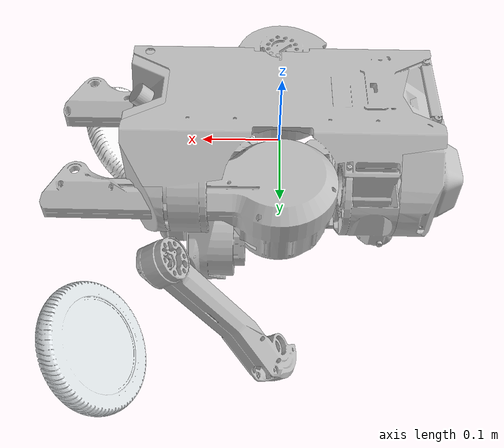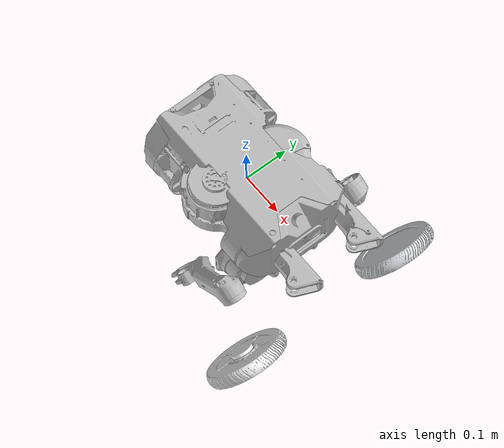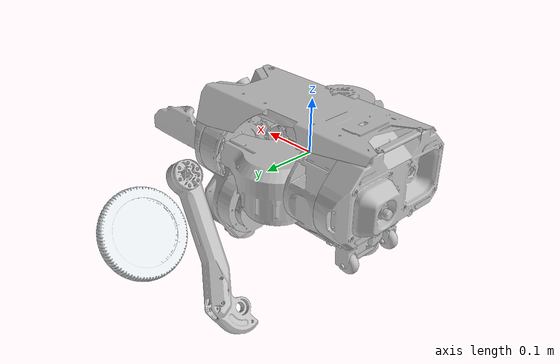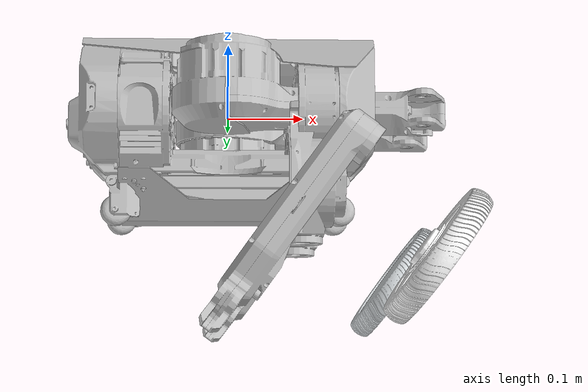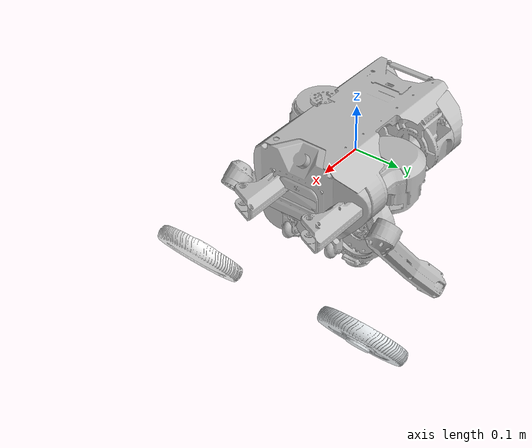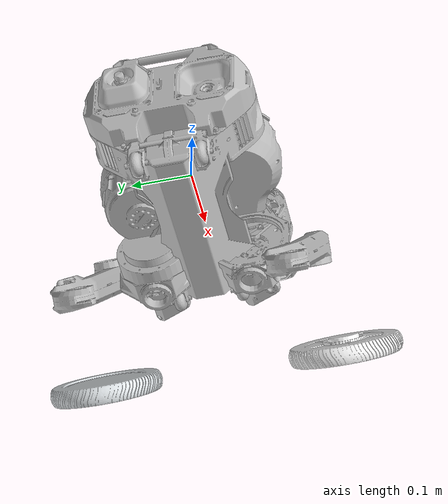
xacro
<?xml version="1.0"?>
<robot name="d1h_description"
    xmlns:xacro="http://www.ros.org/wiki/xacro">
    <xacro:arg name="hw_env" default="none" />

    <xacro:include filename="$(find d1h_description)/xacro/ros2control.xacro"/>
    <xacro:ros2control hw_env="$(arg hw_env)" />

    <xacro:include filename="$(find d1h_description)/xacro/materials.xacro"/>
    <xacro:include filename="$(find d1h_description)/xacro/d1h_base.xacro"/>

    <!-- Robot Base link -->
    <link name="base_link">
        <visual>
            <origin rpy="0 0 0" xyz="0 0 0"/>
            <geometry>
                <box size="0.001 0.001 0.001"/>
            </geometry>
        </visual>
        <inertial>
            <mass value="0.001"/>
            <origin rpy="0 0 0" xyz="0 0 0"/>
            <inertia ixx="0.0001" ixy="0" ixz="0" iyy="0.0001" iyz="0" izz="0.0001"/>
        </inertial>
    </link>

    <!-- Imu link -->
    <link name="imu_link">
        <inertial>
            <mass value="0.001"/>
            <origin rpy="0 0 0" xyz="0 0 0"/>
            <inertia ixx="0.0001" ixy="0" ixz="0" iyy="0.0001" iyz="0" izz="0.0001"/>
        </inertial>
        <visual>
            <origin rpy="0 0 0" xyz="0 0 0"/>
            <geometry>
                <box size="0.001 0.001 0.001"/>
            </geometry>
            <material name="red"/>
        </visual>
        <collision>
            <origin rpy="0 0 0" xyz="0 0 0"/>
            <geometry>
                <box size=".001 .001 .001"/>
            </geometry>
        </collision>
    </link>

    <!-- Imu Joint -->
    <joint name="imu_joint" type="fixed">
        <parent link="base_link"/>
        <child link="imu_link"/>
        <origin rpy="0 0 0" xyz="0 0 0"/>
    </joint>

    <xacro:d1h_base name="F" x_offset="0"/>
</robot>

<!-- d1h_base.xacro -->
<robot name="d1h_description" xmlns:xacro="http://www.ros.org/wiki/xacro">
  <xacro:macro name="d1h_base" params="name x_offset">
    <!-- Base link -->
    <link name="${name}_base_link">
      <inertial>
        <origin xyz="0.030736 0.00016011 -0.033144" rpy="0 0 0" />
        <mass value="9.158"/>
        <inertia ixx="0.073416" ixy="0.00014675" ixz="-0.0079314" iyy="0.12672" iyz="1.9414E-05" izz="0.11933" />
      </inertial>
      <visual>
        <origin xyz="0 0 0" rpy="0 0 0" />
        <geometry>
          <mesh filename="package://d1h_description/meshes/base_link.STL" />
        </geometry>
        <material name="${name}_base_link_material">
          <color rgba="0.75294 0.75294 0.75294 1" />
        </material>
      </visual>
      <collision>
        <origin xyz="0 0 0" rpy="0 0 0" />
        <geometry>
          <box size="0.275 0.15 0.18"/>
        </geometry>
      </collision>
      <collision>
        <origin xyz="0 0 -0.1" rpy="0 0 0" />
        <geometry>
          <box size="0.35 0.15 0.1"/>
        </geometry>
      </collision>
    </link>

    <!-- Base link joint -->
    <joint name="${name}_base_joint" type="fixed">
            <origin xyz="${x_offset} 0 0" rpy="0 0 0" />
            <parent link="base_link" />
            <child link="${name}_base_link" />
    </joint>

    <!-- Face link -->
    <link name="${name}_face_link">
      <inertial>
        <origin xyz="-0.020311 -8.1732E-06 0.0054552" rpy="0 0 0" />
        <mass value="0.7859" />
        <inertia ixx="0.0055946" ixy="9.1956E-08" ixz="-4.5451E-05" iyy="0.0022024" iyz="1.1031E-07" izz="0.0037246" />
      </inertial>
      <visual>
        <origin xyz="0 0 0" rpy="0 0 0" />
        <geometry>
          <mesh filename="package://d1h_description/meshes/face_link.STL" />
        </geometry>
        <material name="${name}_face_link_material">
          <color rgba="0.75294 0.75294 0.75294 1" />
        </material>
      </visual>
      <collision>
        <origin xyz="-0.02 0 0" rpy="0 0 0" />
        <geometry>
            <box size="0.0495 0.15 0.18"/>
        </geometry>
      </collision>
    </link>

    <!-- Face Joint -->
    <joint name="${name}_face_joint" type="fixed">
            <xacro:if value="${(name == 'F')}">
                <origin xyz="0.1875 0 0" rpy="0 0 0" />
            </xacro:if>
            <xacro:if value="${(name == 'R')}">
                <origin xyz="-0.1875 0 0" rpy="0 0 3.14159" />
            </xacro:if>
            <parent link="${name}_base_link" />
            <child link="${name}_face_link" />
            <axis xyz="0 0 0" />
    </joint>

    <!-- Locking Link -->
    <link name="${name}_locking_link">
      <inertial>
        <origin xyz="0.011671 0.011424 0.0056169" rpy="0 0 0" />
        <mass value="1.1043" />
        <inertia ixx="0.0079676" ixy="0.00034788" ixz="1.3911E-05" iyy="0.0026336" iyz="-1.6961E-05" izz="0.0059954" />
      </inertial>
      <visual>
        <origin xyz="0 0 0" rpy="0 0 0" />
        <geometry>
          <mesh filename="package://d1h_description/meshes/locking.STL" />
        </geometry>
        <material name="${name}_locking_link_material">
          <color rgba="0.75294 0.75294 0.75294 1" />
        </material>
      </visual>
     <collision>
        <origin xyz="0.008 0 0" rpy="0 0 0" />
        <geometry>
            <box size="0.0495 0.15 0.175"/>
        </geometry>
      </collision>
    </link>

    <!-- Locking Joint -->
    <joint name="${name}_locking_joint" type="fixed">
      <xacro:if value="${(name == 'F')}">
          <origin xyz="-0.187 0 0" rpy="0 0 0" />
      </xacro:if>
      <xacro:if value="${(name == 'R')}">
          <origin xyz="0.187 0 0" rpy="0 0 3.14159" />
      </xacro:if>
      <parent link="${name}_base_link" />
      <child link="${name}_locking_link" />
      <axis xyz="0 0 0" />
    </joint>

    <!-- L hip link -->
    <link name="${name}L_hip">
      <inertial>
        <origin xyz="-0.093061 -0.015678 -5.1798E-05" rpy="0 0 0" />
        <mass value="1.867" />
        <inertia ixx="0.0026097" ixy="-4.877E-05" ixz="-1.4566E-06" iyy="0.004561" iyz="-6.6091E-07" izz="0.0034067" />
      </inertial>
      <visual>
        <origin xyz="0 0 0" rpy="0 0 0" />
        <geometry>
          <mesh filename="package://d1h_description/meshes/l_hip.STL" />
        </geometry>
        <material name="${name}L_hip_material">
          <color rgba="0.75294 0.75294 0.75294 1" />
        </material>
      </visual>
    </link>

    <!-- L hip joint -->
    <joint name="${name}L_hip_joint" type="revolute">
      <origin xyz="0.0945 0.0775 0" rpy="0 0 0" />
      <parent link="${name}_base_link"/>
      <child link="${name}L_hip"/>
      <axis xyz="1 0 0" />
      <dynamics damping="0.2346" friction="0.943"/>
      <limit lower="-0.7854" upper="0.7854" effort="80" velocity="20" />
    </joint>

    <!-- L thigh link -->
    <link name="${name}L_thigh">
      <inertial>
        <origin xyz="-0.0037341 0.064765 -0.031361" rpy="0 0 0" />
        <mass value="2.8116" />
        <inertia ixx="0.020376" ixy="0.00032059" ixz="-0.001491" iyy="0.020953" iyz="0.0023442" izz="0.0048698" />
      </inertial>
      <visual>
        <origin xyz="0 0 0" rpy="0 0 0" />
        <geometry>
          <mesh filename="package://d1h_description/meshes/l_thigh.STL" />
        </geometry>
        <material name="${name}L_thigh_material">
          <color rgba="0.75294 0.75294 0.75294 1" />
        </material>
      </visual>
      <collision>
        <origin xyz="-0.01 0.1 -0.07" rpy="-1.65 -1.4 0" />
        <geometry>
            <box size="0.3 0.09 0.05"/>
        </geometry>
      </collision>
    </link>

    <!-- L thigh joint -->
    <joint name="${name}L_thigh_joint" type="revolute">
      <origin xyz="-0.0945 0.0005 0" rpy="0 0 0" />
      <parent link="${name}L_hip" />
      <child link="${name}L_thigh" />
      <axis xyz="0 1 0" />
      <dynamics damping="0.2346" friction="0.943"/>
      <limit lower="-1.8326" upper="3.4034" effort="80" velocity="20" />
    </joint>

    <!-- L calf link -->
    <link name="${name}L_calf">
      <inertial>
        <origin xyz="0.08778 0.0049096 -0.092253" rpy="0 0 0" />
        <mass value="0.61004" />
        <inertia ixx="0.0027252" ixy="-0.00022078" ixz="0.0031577" iyy="0.0069291" iyz="0.00018044" izz="0.0044562" />
      </inertial>
      <visual>
        <origin xyz="0 0 0" rpy="0 0 0" />
        <geometry>
          <mesh filename="package://d1h_description/meshes/l_calf.STL" />
        </geometry>
        <material name="${name}L_calf_material">
          <color rgba="0.75294 0.75294 0.75294 1" />
        </material>
      </visual>
      <collision>
        <origin xyz="0.09 0.01 -0.1" rpy="0 0.5 -0.08" />
        <geometry>
            <box size="0.3 0.04 0.05"/>
        </geometry>
      </collision>
    </link>

    <!-- L calf joint -->
    <joint name="${name}L_calf_joint" type="revolute">
      <origin xyz="0 0.091 -0.25" rpy="0 0.85 0" />
      <parent link="${name}L_thigh" />
      <child link="${name}L_calf" />
      <axis xyz="0 1 0" />
      <dynamics damping="0.2346" friction="0.943"/>
      <limit lower="-2.72" upper="-0.85" effort="80" velocity="20" />
    </joint>

    <!-- L foot link -->
    <link name="${name}L_foot">
      <inertial>
        <origin xyz="-1.1929E-05 0.02475 1.4454E-05" rpy="0 0 0" />
        <mass value="1.7547" />
        <inertia ixx="0.0041497" ixy="3.5434E-07" ixz="1.672E-06" iyy="0.0078035" iyz="-7.1022E-08" izz="0.0041483" />
      </inertial>
      <visual>
        <origin xyz="0 0 0" rpy="0 0 0" />
        <geometry>
          <mesh filename="package://d1h_description/meshes/l_foot.STL" />
        </geometry>
        <material name="${name}L_foot_material">
          <color rgba="0.89804 0.91765 0.92941 1" />
        </material>
      </visual>
      <collision>
        <origin xyz="0 0.025 0.0" rpy="1.55 0 0" />
        <geometry>
            <cylinder length="0.04" radius="0.087"/>
        </geometry>
      </collision>
    </link>

    <!-- L foot joint -->
    <joint name="${name}L_foot_joint" type="revolute">
      <origin xyz="0.18376 0.0305 -0.16951" rpy="0 0 0" />
      <parent link="${name}L_calf" />
      <child link="${name}L_foot" />
      <axis xyz="0 1 0" />
      <dynamics damping="0.5" friction="0.0"/>
      <limit lower="-31415926" upper="31415926" effort="12" velocity="30" />
    </joint>

    <!-- R hip link -->
    <link name="${name}R_hip">
      <inertial>
        <origin xyz="-0.093061 0.015678 -5.1798E-05" rpy="0 0 0" />
        <mass value="1.867" />
        <inertia ixx="0.0026097" ixy="4.877E-05" ixz="-1.4566E-06" iyy="0.004561" iyz="6.6091E-07" izz="0.0034067" />
      </inertial>
      <visual>
        <origin xyz="0 0 0" rpy="0 0 0" />
        <geometry>
          <mesh filename="package://d1h_description/meshes/r_hip.STL" />
        </geometry>
        <material name="${name}R_hip_material">
          <color rgba="0.75294 0.75294 0.75294 1" />
        </material>
      </visual>
    </link>

    <!-- R hip joint -->
    <joint name="${name}R_hip_joint" type="revolute">
      <origin xyz="0.0945 -0.0775 0" rpy="0 0 0" />
      <parent link="${name}_base_link" />
      <child link="${name}R_hip" />
      <axis xyz="1 0 0" />
      <dynamics damping="0.2346" friction="0.943"/>
      <limit lower="-0.7854" upper="0.7854" effort="80" velocity="20" />
    </joint>

    <!-- R thigh link -->
    <link name="${name}R_thigh">
      <inertial>
        <origin xyz="-0.0037341 -0.064765 -0.031361" rpy="0 0 0" />
        <mass value="2.8116" />
        <inertia ixx="0.020376" ixy="-0.00032059" ixz="-0.001491" iyy="0.020953" iyz="-0.0023442" izz="0.0048698" />
      </inertial>
      <visual>
        <origin xyz="0 0 0" rpy="0 0 0" />
        <geometry>
          <mesh filename="package://d1h_description/meshes/r_thigh.STL" />
        </geometry>
        <material name="${name}R_thigh_material">
          <color rgba="0.75294 0.75294 0.75294 1" />
        </material>
      </visual>
      <collision>
        <origin xyz="-0.01 -0.1 -0.07" rpy="1.65 -1.4 0" />
        <geometry>
            <box size="0.3 0.09 0.05"/>
        </geometry>
      </collision>
    </link>

    <!-- R thigh joint -->
    <joint name="${name}R_thigh_joint" type="revolute">
      <origin xyz="-0.0945 -0.0005 0" rpy="0 0 0" />
      <parent link="${name}R_hip" />
      <child link="${name}R_thigh" />
      <axis xyz="0 1 0" />
      <dynamics damping="0.2346" friction="0.943"/>
      <limit lower="-1.8326" upper="3.4034" effort="80" velocity="20" />
    </joint>

    <!-- R calf link -->
    <link name="${name}R_calf">
      <inertial>
        <origin xyz="0.08778 -0.0049096 -0.092253" rpy="0 0 0" />
        <mass value="0.61004" />
        <inertia ixx="0.0027252" ixy="0.00022078" ixz="0.0031577" iyy="0.0069291" iyz="-0.00018044" izz="0.0044562" />
      </inertial>
      <visual>
        <origin xyz="0 0 0" rpy="0 0 0" />
        <geometry>
          <mesh filename="package://d1h_description/meshes/r_calf.STL" />
        </geometry>
        <material name="${name}R_calf_material">
          <color rgba="0.75294 0.75294 0.75294 1" />
        </material>
      </visual>
      <collision>
        <origin xyz="0.09 -0.01 -0.1" rpy="0 0.5 0.08" />
        <geometry>
            <box size="0.3 0.04 0.05"/>
        </geometry>
      </collision>
    </link>

    <!-- R calf joint -->
    <joint name="${name}R_calf_joint" type="revolute">
      <origin xyz="0 -0.091 -0.25" rpy="0 0.85 0" />
      <parent link="${name}R_thigh" />
      <child link="${name}R_calf" />
      <axis xyz="0 1 0" />
      <dynamics damping="0.2346" friction="0.943"/>
      <limit lower="-2.72" upper="-0.85" effort="80" velocity="20" />
    </joint>

    <!-- R foot link -->
    <link name="${name}R_foot">
      <inertial>
        <origin xyz="-1.1929E-05 -0.02475 1.4454E-05" rpy="0 0 0" />
        <mass value="1.7547" />
        <inertia ixx="0.0041497" ixy="-3.5434E-07" ixz="1.672E-06" iyy="0.0078035" iyz="7.1022E-08" izz="0.0041483" />
      </inertial>
      <visual>
        <origin xyz="0 0 0" rpy="0 0 0" />
        <geometry>
          <mesh filename="package://d1h_description/meshes/r_foot.STL" />
        </geometry>
        <material name="${name}R_foot_material">
          <color rgba="1 1 1 1" />
        </material>
      </visual>
      <collision>
        <origin xyz="0 -0.025 0" rpy="1.55 0 0" />
        <geometry>
            <cylinder length="0.04" radius="0.087"/>
        </geometry>
      </collision>
    </link>

    <!-- R foot joint -->
    <joint name="${name}R_foot_joint" type="revolute">
      <origin xyz="0.18376 -0.0305 -0.16951" rpy="0 0 0" />
      <parent link="${name}R_calf" />
      <child link="${name}R_foot" />
      <axis xyz="0 1 0" />
      <dynamics damping="0.5" friction="0.0"/>
      <limit lower="-31415926" upper="31415926" effort="12" velocity="30" />
    </joint>
  </xacro:macro>
</robot>
